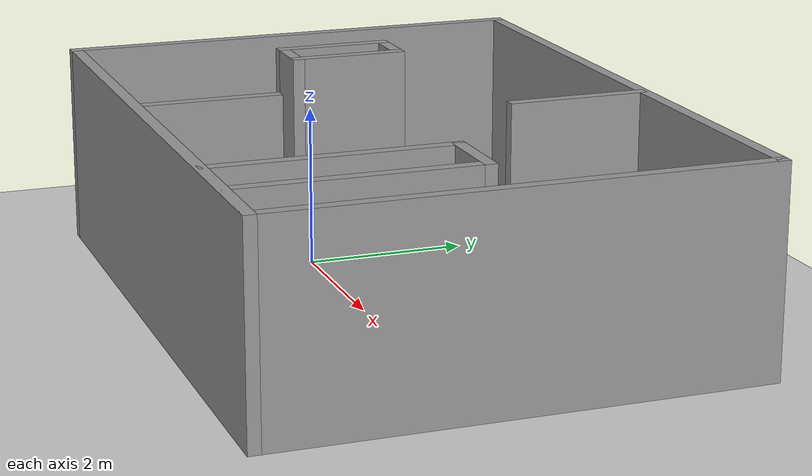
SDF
<sdf version="1.7">
 <world name="default">
  <light name="sun" type="directional">
   <pose>0 0 10 0 -0 0</pose>
   <diffuse>0.8 0.8 0.8 1</diffuse>
   <specular>0.2 0.2 0.2 1</specular>
   <attenuation>
    <range>1000</range>
    <constant>0.9</constant>
    <linear>0.01</linear>
    <quadratic>0.001</quadratic>
   </attenuation>
   <direction>-0.5 0.1 -0.9</direction>
   <spot><inner_angle>0</inner_angle><outer_angle>0</outer_angle><falloff>0</falloff></spot>
  </light>
  <model name="ground_plane">
   <static>1</static>
   <link name="link">
    <collision name="collision">
     <geometry><plane><normal>0 0 1</normal><size>100 100</size></plane></geometry>
     <surface>
      <contact><collide_bitmask>65535</collide_bitmask></contact>
      <friction><ode><mu>100</mu><mu2>50</mu2></ode></friction>
     </surface>
    </collision>
    <visual name="visual">
     <cast_shadows>0</cast_shadows>
     <geometry><plane><normal>0 0 1</normal><size>100 100</size></plane></geometry>
     <material>
      <script><uri>file://media/materials/scripts/gazebo.material</uri><name>Gazebo/Grey</name></script>
     </material>
    </visual>
   </link>
  </model>
  <gravity>0 0 -9.8</gravity>
  <magnetic_field>6e-06 2.3e-05 -4.2e-05</magnetic_field>
  <atmosphere type="adiabatic"/>
  <physics type="ode">
   <max_step_size>0.001</max_step_size>
   <real_time_factor>1</real_time_factor>
   <real_time_update_rate>1000</real_time_update_rate>
  </physics>
  <scene><ambient>0.4 0.4 0.4 1</ambient><background>0.7 0.7 0.7 1</background><shadows>1</shadows></scene>
  <spherical_coordinates>
   <surface_model>EARTH_WGS84</surface_model>
   <latitude_deg>0</latitude_deg>
   <longitude_deg>0</longitude_deg>
   <elevation>0</elevation>
   <heading_deg>0</heading_deg>
  </spherical_coordinates>
  <model name="Untitled5">
   <pose>1.805 0.455 0 0 -0 0</pose>
   <link name="Wall_0">
    <collision name="Wall_0_Collision">
     <geometry><box><size>6 0.15 2.5</size></box></geometry>
     <pose>0 0 1.25 0 -0 0</pose>
    </collision>
    <visual name="Wall_0_Visual">
     <pose>0 0 1.25 0 -0 0</pose>
     <geometry><box><size>6 0.15 2.5</size></box></geometry>
     <material>
      <script><uri>file://media/materials/scripts/gazebo.material</uri><name>Gazebo/Grey</name></script>
      <ambient>1 1 1 1</ambient>
     </material>
     <meta><layer>0</layer></meta>
    </visual>
    <pose>-3.925 0 0 0 -0 1.5708</pose>
   </link>
   <link name="Wall_1">
    <collision name="Wall_1_Collision">
     <geometry><box><size>8 0.15 2.5</size></box></geometry>
     <pose>0 0 1.25 0 -0 0</pose>
    </collision>
    <visual name="Wall_1_Visual">
     <pose>0 0 1.25 0 -0 0</pose>
     <geometry><box><size>8 0.15 2.5</size></box></geometry>
     <material>
      <script><uri>file://media/materials/scripts/gazebo.material</uri><name>Gazebo/Grey</name></script>
      <ambient>1 1 1 1</ambient>
     </material>
     <meta><layer>0</layer></meta>
    </visual>
    <pose>-0 2.925 0 0 -0 0</pose>
   </link>
   <link name="Wall_10">
    <collision name="Wall_10_Collision">
     <geometry><box><size>3 0.15 2.5</size></box></geometry>
     <pose>0 0 1.25 0 -0 0</pose>
    </collision>
    <visual name="Wall_10_Visual">
     <pose>0 0 1.25 0 -0 0</pose>
     <geometry><box><size>3 0.15 2.5</size></box></geometry>
     <material>
      <script><uri>file://media/materials/scripts/gazebo.material</uri><name>Gazebo/Grey</name></script>
      <ambient>1 1 1 1</ambient>
     </material>
     <meta><layer>0</layer></meta>
    </visual>
    <pose>3.00402 -1.45377 0 0 -0 1.5708</pose>
   </link>
   <link name="Wall_12">
    <collision name="Wall_12_Collision">
     <geometry><box><size>1 0.15 2.5</size></box></geometry>
     <pose>0 0 1.25 0 -0 0</pose>
    </collision>
    <visual name="Wall_12_Visual">
     <pose>0 0 1.25 0 -0 0</pose>
     <geometry><box><size>1 0.15 2.5</size></box></geometry>
     <material>
      <script><uri>file://media/materials/scripts/gazebo.material</uri><name>Gazebo/Grey</name></script>
      <ambient>1 1 1 1</ambient>
     </material>
     <meta><layer>0</layer></meta>
    </visual>
    <pose>2.57902 -0.028772 0 0 -0 3.14159</pose>
   </link>
   <link name="Wall_13">
    <collision name="Wall_13_Collision">
     <geometry><box><size>3 0.15 2.5</size></box></geometry>
     <pose>0 0 1.25 0 -0 0</pose>
    </collision>
    <visual name="Wall_13_Visual">
     <pose>0 0 1.25 0 -0 0</pose>
     <geometry><box><size>3 0.15 2.5</size></box></geometry>
     <material>
      <script><uri>file://media/materials/scripts/gazebo.material</uri><name>Gazebo/Grey</name></script>
      <ambient>1 1 1 1</ambient>
     </material>
     <meta><layer>0</layer></meta>
    </visual>
    <pose>2.15402 -1.45377 0 0 -0 -1.5708</pose>
   </link>
   <link name="Wall_19">
    <collision name="Wall_19_Collision">
     <geometry><box><size>1.5 0.15 2.5</size></box></geometry>
     <pose>0 0 1.25 0 -0 0</pose>
    </collision>
    <visual name="Wall_19_Visual">
     <pose>0 0 1.25 0 -0 0</pose>
     <geometry><box><size>1.5 0.15 2.5</size></box></geometry>
     <material>
      <script><uri>file://media/materials/scripts/gazebo.material</uri><name>Gazebo/Grey</name></script>
      <ambient>1 1 1 1</ambient>
     </material>
     <meta><layer>0</layer></meta>
    </visual>
    <pose>-3.06598 0.266228 0 0 -0 -1.5708</pose>
   </link>
   <link name="Wall_2">
    <collision name="Wall_2_Collision">
     <geometry><box><size>6 0.15 2.5</size></box></geometry>
     <pose>0 0 1.25 0 -0 0</pose>
    </collision>
    <visual name="Wall_2_Visual">
     <pose>0 0 1.25 0 -0 0</pose>
     <geometry><box><size>6 0.15 2.5</size></box></geometry>
     <material>
      <script><uri>file://media/materials/scripts/gazebo.material</uri><name>Gazebo/Grey</name></script>
      <ambient>1 1 1 1</ambient>
     </material>
     <meta><layer>0</layer></meta>
    </visual>
    <pose>3.925 0 0 0 -0 -1.5708</pose>
   </link>
   <link name="Wall_26">
    <collision name="Wall_26_Collision">
     <geometry><box><size>0.75 0.15 2.5</size></box></geometry>
     <pose>0 0 1.25 0 -0 0</pose>
    </collision>
    <visual name="Wall_26_Visual">
     <pose>0 0 1.25 0 -0 0</pose>
     <geometry><box><size>0.75 0.15 2.5</size></box></geometry>
     <material>
      <script><uri>file://media/materials/scripts/gazebo.material</uri><name>Gazebo/Grey</name></script>
      <ambient>1 1 1 1</ambient>
     </material>
     <meta><layer>0</layer></meta>
    </visual>
    <pose>-2.76598 0.941228 0 0 -0 0</pose>
   </link>
   <link name="Wall_27">
    <collision name="Wall_27_Collision">
     <geometry><box><size>1.5 0.15 2.5</size></box></geometry>
     <pose>0 0 1.25 0 -0 0</pose>
    </collision>
    <visual name="Wall_27_Visual">
     <pose>0 0 1.25 0 -0 0</pose>
     <geometry><box><size>1.5 0.15 2.5</size></box></geometry>
     <material>
      <script><uri>file://media/materials/scripts/gazebo.material</uri><name>Gazebo/Grey</name></script>
      <ambient>1 1 1 1</ambient>
     </material>
     <meta><layer>0</layer></meta>
    </visual>
    <pose>-2.46598 0.266228 0 0 -0 -1.5708</pose>
   </link>
   <link name="Wall_28">
    <collision name="Wall_28_Collision">
     <geometry><box><size>0.75 0.15 2.5</size></box></geometry>
     <pose>0 0 1.25 0 -0 0</pose>
    </collision>
    <visual name="Wall_28_Visual">
     <pose>0 0 1.25 0 -0 0</pose>
     <geometry><box><size>0.75 0.15 2.5</size></box></geometry>
     <material>
      <script><uri>file://media/materials/scripts/gazebo.material</uri><name>Gazebo/Grey</name></script>
      <ambient>1 1 1 1</ambient>
     </material>
     <meta><layer>0</layer></meta>
    </visual>
    <pose>-2.76598 -0.408772 0 0 -0 3.14159</pose>
   </link>
   <link name="Wall_3">
    <collision name="Wall_3_Collision">
     <geometry><box><size>8 0.15 2.5</size></box></geometry>
     <pose>0 0 1.25 0 -0 0</pose>
    </collision>
    <visual name="Wall_3_Visual">
     <pose>0 0 1.25 0 -0 0</pose>
     <geometry><box><size>8 0.15 2.5</size></box></geometry>
     <material>
      <script><uri>file://media/materials/scripts/gazebo.material</uri><name>Gazebo/Grey</name></script>
      <ambient>1 1 1 1</ambient>
     </material>
     <meta><layer>0</layer></meta>
    </visual>
    <pose>-0 -2.925 0 0 -0 3.14159</pose>
   </link>
   <link name="Wall_30">
    <collision name="Wall_30_Collision">
     <geometry><box><size>1.75 0.15 2.5</size></box></geometry>
     <pose>0 0 1.25 0 -0 0</pose>
    </collision>
    <visual name="Wall_30_Visual">
     <pose>0 0 1.25 0 -0 0</pose>
     <geometry><box><size>1.75 0.15 2.5</size></box></geometry>
     <material>
      <script><uri>file://media/materials/scripts/gazebo.material</uri><name>Gazebo/Grey</name></script>
      <ambient>1 1 1 1</ambient>
     </material>
     <meta><layer>0</layer></meta>
    </visual>
    <pose>-0.715692 -2.03645 0 0 -0 -1.5708</pose>
   </link>
   <link name="Wall_32">
    <collision name="Wall_32_Collision">
     <geometry><box><size>1.75 0.15 2.5</size></box></geometry>
     <pose>0 0 1.25 0 -0 0</pose>
    </collision>
    <visual name="Wall_32_Visual">
     <pose>0 0 1.25 0 -0 0</pose>
     <geometry><box><size>1.75 0.15 2.5</size></box></geometry>
     <material>
      <script><uri>file://media/materials/scripts/gazebo.material</uri><name>Gazebo/Grey</name></script>
      <ambient>1 1 1 1</ambient>
     </material>
     <meta><layer>0</layer></meta>
    </visual>
    <pose>0.624308 2.07355 0 0 -0 -1.5708</pose>
   </link>
   <static>1</static>
  </model>
 </world>
</sdf>
